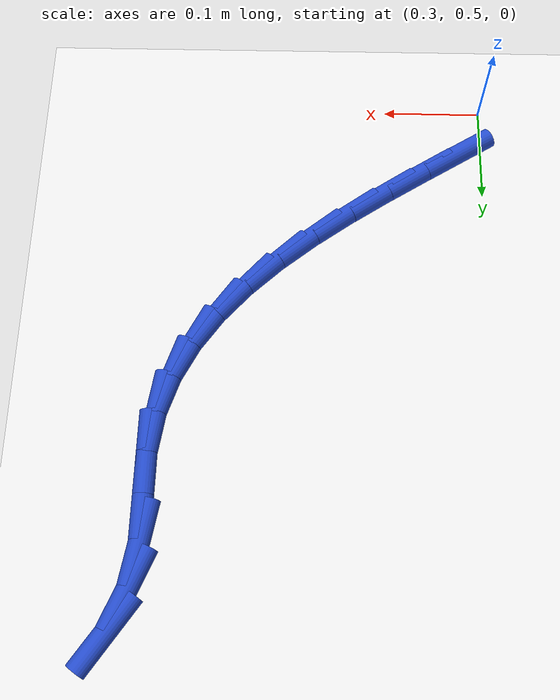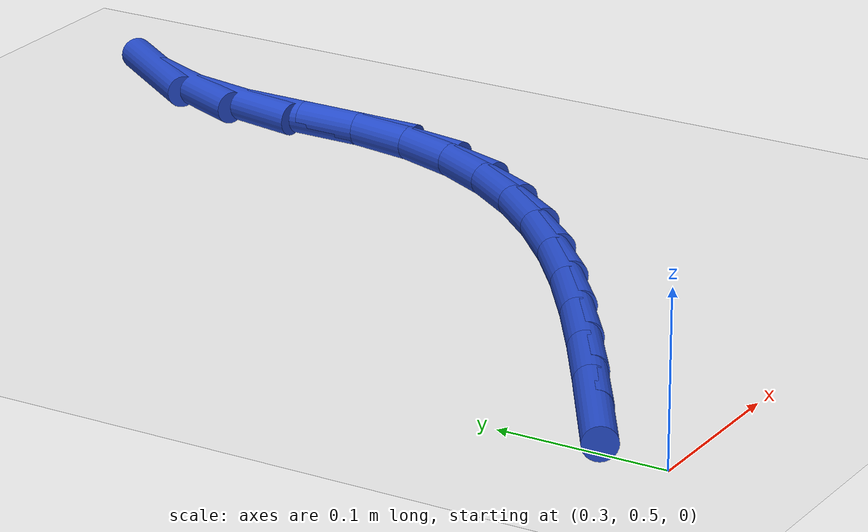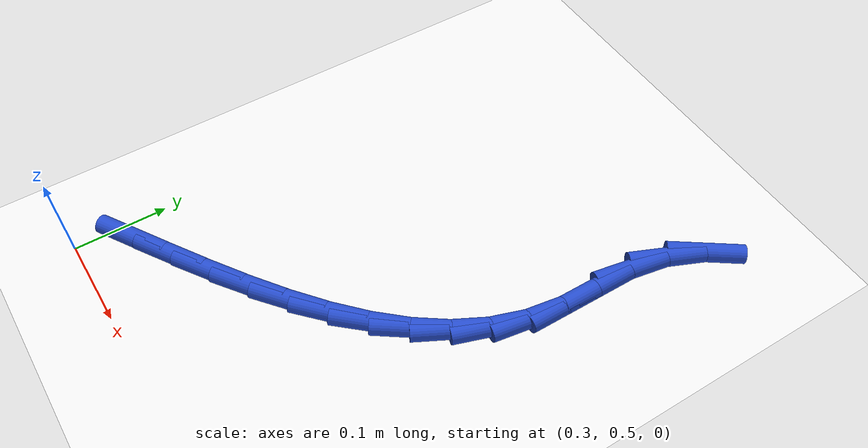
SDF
<sdf version="1.6">
 <world name="default">
  <model name="ground_plane">
   <static>1</static>
   <link name="link">
    <collision name="collision">
     <geometry><plane><normal>0 0 1</normal><size>100 100</size></plane></geometry>
     <surface><friction><ode><mu>100</mu><mu2>50</mu2></ode></friction></surface>
    </collision>
    <visual name="visual">
     <cast_shadows>0</cast_shadows>
     <geometry><plane><normal>0 0 1</normal><size>100 100</size></plane></geometry>
     <material>
      <script><uri>file://media/materials/scripts/gazebo.material</uri><name>Gazebo/WhiteGlow</name></script>
     </material>
    </visual>
   </link>
  </model>
  <model name="line">
   <link name="link_16">
    <pose>0.32556702087587536 0.5560352044613422 0.01 0 1.57 0.5590639771397028</pose>
    <collision name="collision">
     <geometry><cylinder><radius>0.01</radius><length>0.08</length></cylinder></geometry>
    </collision>
    <visual name="visual">
     <material>
      <script><name>Gazebo/Blue</name><uri>file://media/materials/scripts/gazebo.material</uri></script>
     </material>
     <geometry><cylinder><radius>0.01</radius><length>0.08</length></cylinder></geometry>
    </visual>
   </link>
   <link name="link_17">
    <pose>0.36524147354678116 0.5808573812832343 0.01 0 1.57 0.5691309588876201</pose>
    <collision name="collision">
     <geometry><cylinder><radius>0.01</radius><length>0.08</length></cylinder></geometry>
    </collision>
    <visual name="visual">
     <material>
      <script><name>Gazebo/Blue</name><uri>file://media/materials/scripts/gazebo.material</uri></script>
     </material>
     <geometry><cylinder><radius>0.01</radius><length>0.08</length></cylinder></geometry>
    </visual>
   </link>
   <link name="link_18">
    <pose>0.4042569666453432 0.6058172759485738 0.01 0 1.57 0.5917969224936898</pose>
    <collision name="collision">
     <geometry><cylinder><radius>0.01</radius><length>0.08</length></cylinder></geometry>
    </collision>
    <visual name="visual">
     <material>
      <script><name>Gazebo/Blue</name><uri>file://media/materials/scripts/gazebo.material</uri></script>
     </material>
     <geometry><cylinder><radius>0.01</radius><length>0.08</length></cylinder></geometry>
    </visual>
   </link>
   <link name="link_19">
    <pose>0.4420120434233125 0.6311947764866226 0.01 0 1.57 0.628264835616634</pose>
    <collision name="collision">
     <geometry><cylinder><radius>0.01</radius><length>0.08</length></cylinder></geometry>
    </collision>
    <visual name="visual">
     <material>
      <script><name>Gazebo/Blue</name><uri>file://media/materials/scripts/gazebo.material</uri></script>
     </material>
     <geometry><cylinder><radius>0.01</radius><length>0.08</length></cylinder></geometry>
    </visual>
   </link>
   <link name="link_20">
    <pose>0.4779052471324406 0.6572697709266437 0.01 0 1.57 0.6803422512708152</pose>
    <collision name="collision">
     <geometry><cylinder><radius>0.01</radius><length>0.08</length></cylinder></geometry>
    </collision>
    <visual name="visual">
     <material>
      <script><name>Gazebo/Blue</name><uri>file://media/materials/scripts/gazebo.material</uri></script>
     </material>
     <geometry><cylinder><radius>0.01</radius><length>0.08</length></cylinder></geometry>
    </visual>
   </link>
   <link name="link_21">
    <pose>0.5113351210244792 0.6843221472978996 0.01 0 1.57 0.7503813735861097</pose>
    <collision name="collision">
     <geometry><cylinder><radius>0.01</radius><length>0.08</length></cylinder></geometry>
    </collision>
    <visual name="visual">
     <material>
      <script><name>Gazebo/Blue</name><uri>file://media/materials/scripts/gazebo.material</uri></script>
     </material>
     <geometry><cylinder><radius>0.01</radius><length>0.08</length></cylinder></geometry>
    </visual>
   </link>
   <link name="link_22">
    <pose>0.541700208351179 0.712631793629652 0.01 0 1.57 0.8410118897159045</pose>
    <collision name="collision">
     <geometry><cylinder><radius>0.01</radius><length>0.08</length></cylinder></geometry>
    </collision>
    <visual name="visual">
     <material>
      <script><name>Gazebo/Blue</name><uri>file://media/materials/scripts/gazebo.material</uri></script>
     </material>
     <geometry><cylinder><radius>0.01</radius><length>0.08</length></cylinder></geometry>
    </visual>
   </link>
   <link name="link_23">
    <pose>0.5683990523642919 0.7424785979511641 0.01 0 1.57 0.9544450644065099</pose>
    <collision name="collision">
     <geometry><cylinder><radius>0.01</radius><length>0.08</length></cylinder></geometry>
    </collision>
    <visual name="visual">
     <material>
      <script><name>Gazebo/Blue</name><uri>file://media/materials/scripts/gazebo.material</uri></script>
     </material>
     <geometry><cylinder><radius>0.01</radius><length>0.08</length></cylinder></geometry>
    </visual>
   </link>
   <link name="link_24">
    <pose>0.5908301963155688 0.7741424482916972 0.01 0 1.57 1.0911283099211424</pose>
    <collision name="collision">
     <geometry><cylinder><radius>0.01</radius><length>0.08</length></cylinder></geometry>
    </collision>
    <visual name="visual">
     <material>
      <script><name>Gazebo/Blue</name><uri>file://media/materials/scripts/gazebo.material</uri></script>
     </material>
     <geometry><cylinder><radius>0.01</radius><length>0.08</length></cylinder></geometry>
    </visual>
   </link>
   <link name="link_25">
    <pose>0.6083921834567613 0.8079032326805149 0.01 0 1.57 1.2479129136948601</pose>
    <collision name="collision">
     <geometry><cylinder><radius>0.01</radius><length>0.08</length></cylinder></geometry>
    </collision>
    <visual name="visual">
     <material>
      <script><name>Gazebo/Blue</name><uri>file://media/materials/scripts/gazebo.material</uri></script>
     </material>
     <geometry><cylinder><radius>0.01</radius><length>0.08</length></cylinder></geometry>
    </visual>
   </link>
   <link name="link_26">
    <pose>0.6204835570396209 0.8440408391468792 0.01 0 1.57 1.4168643602684037</pose>
    <collision name="collision">
     <geometry><cylinder><radius>0.01</radius><length>0.08</length></cylinder></geometry>
    </collision>
    <visual name="visual">
     <material>
      <script><name>Gazebo/Blue</name><uri>file://media/materials/scripts/gazebo.material</uri></script>
     </material>
     <geometry><cylinder><radius>0.01</radius><length>0.08</length></cylinder></geometry>
    </visual>
   </link>
   <link name="link_27">
    <pose>0.6265028603158986 0.8828351557200522 0.01 0 1.57 1.562119282736221</pose>
    <collision name="collision">
     <geometry><cylinder><radius>0.01</radius><length>0.08</length></cylinder></geometry>
    </collision>
    <visual name="visual">
     <material>
      <script><name>Gazebo/Blue</name><uri>file://media/materials/scripts/gazebo.material</uri></script>
     </material>
     <geometry><cylinder><radius>0.01</radius><length>0.08</length></cylinder></geometry>
    </visual>
   </link>
   <link name="link_28">
    <pose>0.6268619812969292 0.9242215962735912 0.01 0 1.57 1.5625889475262384</pose>
    <collision name="collision">
     <geometry><cylinder><radius>0.01</radius><length>0.08</length></cylinder></geometry>
    </collision>
    <visual name="visual">
     <material>
      <script><name>Gazebo/Blue</name><uri>file://media/materials/scripts/gazebo.material</uri></script>
     </material>
     <geometry><cylinder><radius>0.01</radius><length>0.08</length></cylinder></geometry>
    </visual>
   </link>
   <link name="link_29">
    <pose>0.6272078021137899 0.9663560024649213 0.01 0 1.57 1.3935737563570456</pose>
    <collision name="collision">
     <geometry><cylinder><radius>0.01</radius><length>0.08</length></cylinder></geometry>
    </collision>
    <visual name="visual">
     <material>
      <script><name>Gazebo/Blue</name><uri>file://media/materials/scripts/gazebo.material</uri></script>
     </material>
     <geometry><cylinder><radius>0.01</radius><length>0.08</length></cylinder></geometry>
    </visual>
   </link>
   <link name="link_30">
    <pose>0.6344724781294213 1.0069177680674832 0.01 0 1.57 1.1639107024751971</pose>
    <collision name="collision">
     <geometry><cylinder><radius>0.01</radius><length>0.08</length></cylinder></geometry>
    </collision>
    <visual name="visual">
     <material>
      <script><name>Gazebo/Blue</name><uri>file://media/materials/scripts/gazebo.material</uri></script>
     </material>
     <geometry><cylinder><radius>0.01</radius><length>0.08</length></cylinder></geometry>
    </visual>
   </link>
   <link name="link_31">
    <pose>0.6507744069647059 1.0447471053343562 0.01 0 1.57 0.9604710027419516</pose>
    <collision name="collision">
     <geometry><cylinder><radius>0.01</radius><length>0.08</length></cylinder></geometry>
    </collision>
    <visual name="visual">
     <material>
      <script><name>Gazebo/Blue</name><uri>file://media/materials/scripts/gazebo.material</uri></script>
     </material>
     <geometry><cylinder><radius>0.01</radius><length>0.08</length></cylinder></geometry>
    </visual>
   </link>
  </model>
 </world>
</sdf>
